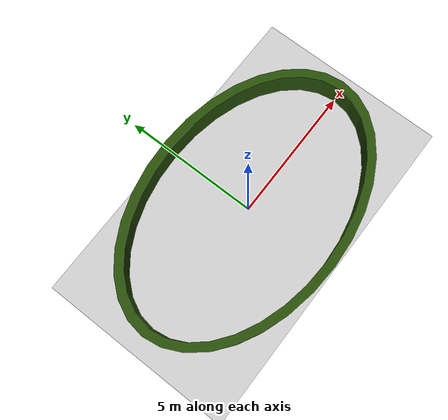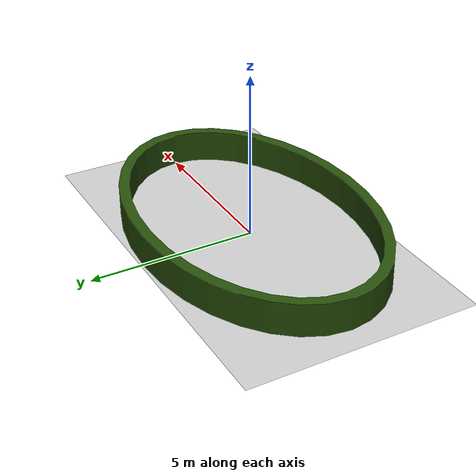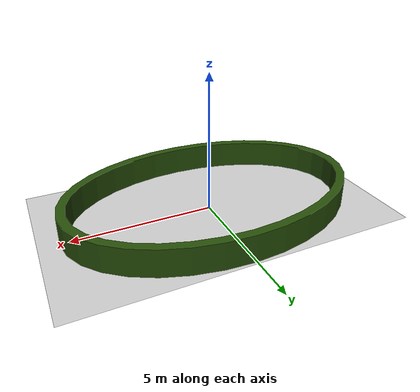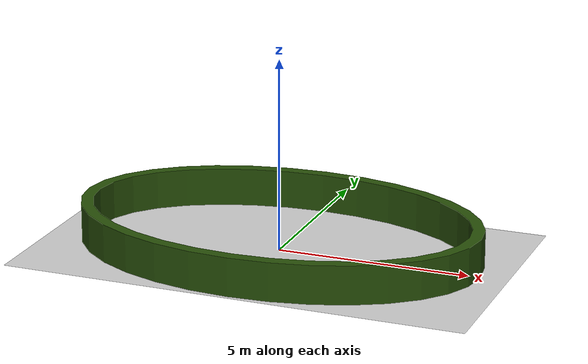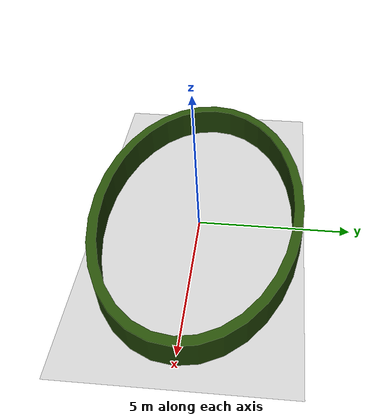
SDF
<?xml version="1.0"?>

<sdf version="1.6">
  <world name="ellipse">
    <physics name="1ms" type="ignored">
      <max_step_size>0.001</max_step_size>
      <real_time_factor>1.0</real_time_factor>
    </physics>

    <plugin filename="ignition-gazebo-contact-system" name="gz::sim::systems::Contact" />
    <plugin filename="ignition-gazebo-imu-system" name="gz::sim::systems::Imu" />
    <plugin filename="ignition-gazebo-physics-system" name="gz::sim::systems::Physics" />
    <plugin filename="ignition-gazebo-scene-broadcaster-system"
      name="gz::sim::systems::SceneBroadcaster" />
    <plugin filename="ignition-gazebo-sensors-system" name="gz::sim::systems::Sensors" />
    <plugin filename="ignition-gazebo-user-commands-system" name="gz::sim::systems::UserCommands" />

    <spherical_coordinates>
      <surface_model>EARTH_WGS84</surface_model>
      <world_frame_orientation>ENU</world_frame_orientation>
      <latitude_deg>50.088384</latitude_deg>
      <longitude_deg>19.939128</longitude_deg>
      <elevation>0</elevation>
      <heading_deg>0</heading_deg>
    </spherical_coordinates>

    <model name="ellipse">
      <static>true</static>
      <link name="mesh">
        <pose>0 0 0 0 0 0</pose>
        <visual name="visual">
          <geometry>
            <mesh>
              <uri>model://Rsait/meshes/ellipse.dae</uri>
              <scale>2.0 2.0 2.0</scale>
            </mesh>
          </geometry>
        </visual>
        <collision name="visual">
          <geometry>
            <mesh>
              <uri>model://Rsait/meshes/ellipse.dae</uri>
              <scale>2.0 2.0 2.0</scale>
            </mesh>
          </geometry>
        </collision>
      </link>

      <link name="map">
        <light type="directional" name="sun">
          <cast_shadows>true</cast_shadows>
          <pose>0 0 10 0 0 0</pose>
          <diffuse>0.8 0.8 0.8 1</diffuse>
          <specular>0.2 0.2 0.2 1</specular>
          <attenuation>
            <range>1000</range>
            <constant>0.9</constant>
            <linear>0.01</linear>
            <quadratic>0.001</quadratic>
          </attenuation>
          <direction>-0.5 0.1 -0.9</direction>
        </light>
        <collision name="collision">
          <geometry>
            <plane>
              <normal>0 0 1</normal>
              <size>12 7</size>
            </plane>
          </geometry>
        </collision>
        <visual name="visual">
          <geometry>
            <plane>
              <normal>0 0 1</normal>
              <size>12 7</size>
            </plane>
          </geometry>
          <material>
            <ambient>0.8 0.8 0.8 1</ambient>
            <diffuse>0.8 0.8 0.8 1</diffuse>
            <specular>0.8 0.8 0.8 1</specular>
          </material>
        </visual>
      </link>
    </model>

  </world>
</sdf>
